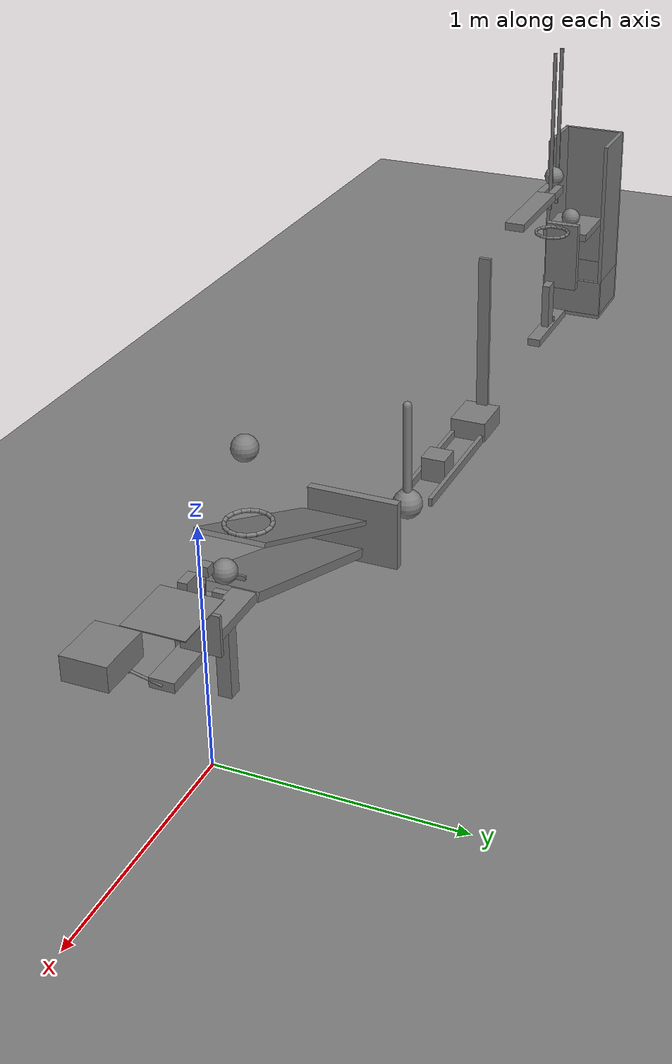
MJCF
<mujoco model="separated_gate_and_striker_cascade">
  <compiler angle="radian"/>
  <option timestep="0.002"/>
  <worldbody>
    <geom name="floor" type="plane" size="12 12 0.1" friction="0.72 0.005 0.0001"/>
    <body name="lever1" pos="0 0 0.55">
      <joint name="lever1_hinge" type="hinge" pos="0 0 0" axis="0 1 0" limited="true" range="-0.785398 0" stiffness="0.03" springref="-0.785398" damping="0.04"/>
      <geom name="lever1" type="box" pos="0 0 0" size="0.3 0.05 0.02" mass="0.411" friction="0.72 0.005 0.0001" solref="0.01 0.715646"/>
      <geom name="lever counterweight" type="box" pos="0.015 0.03 0.3" size="0.02 0.02 0.02" mass="0.08" friction="0.72 0.005 0.0001" solref="0.01 0.715646"/>
      <geom name="lever counterweight stem" type="capsule" size="0.002" fromto="0 0 0 0.015 0.03 0.28" mass="0.001" friction="0.72 0.005 0.0001" solref="0.01 0.715646"/>
      <geom name="lever gate lifter" type="box" pos="0.1 0.045 0.1025" size="0.0075 0.08 0.0825" mass="0.003" friction="0.72 0.005 0.0001" solref="0.01 0.715646"/>
      <geom name="lever cart striker" type="sphere" pos="0.29 -0.13 0.02" size="0.01" mass="0.003" friction="0.72 0.005 0.0001" solref="0.01 0.715646"/>
      <geom name="lever striker link" type="capsule" size="0.005" fromto="0.3 0 0 0.29 -0.13 0.02" mass="0.002" friction="0.72 0.005 0.0001" solref="0.01 0.715646"/>
    </body>
    <body name="ring1">
      <geom name="ring1_00" type="capsule" size="0.008" fromto="-0.197 0.04 0.87 -0.203699 0.0736761 0.87" friction="0.72 0.005 0.0001" solref="0.01 0.715646"/>
      <geom name="ring1_01" type="capsule" size="0.008" fromto="-0.203699 0.0736761 0.87 -0.222775 0.102225 0.87" friction="0.72 0.005 0.0001" solref="0.01 0.715646"/>
      <geom name="ring1_02" type="capsule" size="0.008" fromto="-0.222775 0.102225 0.87 -0.251324 0.121301 0.87" friction="0.72 0.005 0.0001" solref="0.01 0.715646"/>
      <geom name="ring1_03" type="capsule" size="0.008" fromto="-0.251324 0.121301 0.87 -0.285 0.128 0.87" friction="0.72 0.005 0.0001" solref="0.01 0.715646"/>
      <geom name="ring1_04" type="capsule" size="0.008" fromto="-0.285 0.128 0.87 -0.318676 0.121301 0.87" friction="0.72 0.005 0.0001" solref="0.01 0.715646"/>
      <geom name="ring1_05" type="capsule" size="0.008" fromto="-0.318676 0.121301 0.87 -0.347225 0.102225 0.87" friction="0.72 0.005 0.0001" solref="0.01 0.715646"/>
      <geom name="ring1_06" type="capsule" size="0.008" fromto="-0.347225 0.102225 0.87 -0.366301 0.0736761 0.87" friction="0.72 0.005 0.0001" solref="0.01 0.715646"/>
      <geom name="ring1_07" type="capsule" size="0.008" fromto="-0.366301 0.0736761 0.87 -0.373 0.04 0.87" friction="0.72 0.005 0.0001" solref="0.01 0.715646"/>
      <geom name="ring1_08" type="capsule" size="0.008" fromto="-0.373 0.04 0.87 -0.366301 0.00632386 0.87" friction="0.72 0.005 0.0001" solref="0.01 0.715646"/>
      <geom name="ring1_09" type="capsule" size="0.008" fromto="-0.366301 0.00632386 0.87 -0.347225 -0.0222254 0.87" friction="0.72 0.005 0.0001" solref="0.01 0.715646"/>
      <geom name="ring1_10" type="capsule" size="0.008" fromto="-0.347225 -0.0222254 0.87 -0.318676 -0.0413014 0.87" friction="0.72 0.005 0.0001" solref="0.01 0.715646"/>
      <geom name="ring1_11" type="capsule" size="0.008" fromto="-0.318676 -0.0413014 0.87 -0.285 -0.048 0.87" friction="0.72 0.005 0.0001" solref="0.01 0.715646"/>
      <geom name="ring1_12" type="capsule" size="0.008" fromto="-0.285 -0.048 0.87 -0.251324 -0.0413014 0.87" friction="0.72 0.005 0.0001" solref="0.01 0.715646"/>
      <geom name="ring1_13" type="capsule" size="0.008" fromto="-0.251324 -0.0413014 0.87 -0.222775 -0.0222254 0.87" friction="0.72 0.005 0.0001" solref="0.01 0.715646"/>
      <geom name="ring1_14" type="capsule" size="0.008" fromto="-0.222775 -0.0222254 0.87 -0.203699 0.00632386 0.87" friction="0.72 0.005 0.0001" solref="0.01 0.715646"/>
      <geom name="ring1_15" type="capsule" size="0.008" fromto="-0.203699 0.00632386 0.87 -0.197 0.04 0.87" friction="0.72 0.005 0.0001" solref="0.01 0.715646"/>
    </body>
    <body name="ball1" pos="-0.285 0.04 1.17">
      <freejoint/>
      <geom name="ball1" type="sphere" pos="0 0 0" size="0.05" mass="0.2" condim="6" friction="0.72 0.005 0.0001" solref="0.01 0.715646"/>
    </body>
    <body name="cart1 release gate" pos="0.165 -0.02 0.751">
      <joint name="cart1_gate_slide" type="slide" pos="0 0 0" axis="0 0 1" limited="true" range="0 0.05" damping="0.2"/>
      <geom name="cart1 release gate" type="box" pos="0 0 0" size="0.135 0.125 0.002" mass="0.01" friction="0.72 0.005 0.0001" solref="0.01 0.715646"/>
    </body>
    <body name="cart1" pos="0.41 -0.15 0.7">
      <joint name="cart1_slide" type="slide" pos="0 0 0" axis="1 0 0" limited="true" range="-0.6 0" stiffness="180" springref="-0.42" damping="0.2"/>
      <geom name="cart1" type="box" pos="0 0 0" size="0.11 0.09 0.05" mass="0.5" friction="0.72 0.005 0.0001" solref="0.01 0.715646"/>
    </body>
    <body name="domino1 platform">
      <geom name="domino1 platform" type="box" pos="-0.3 -0.15 0.41" size="0.2 0.035 0.02" friction="0.72 0.005 0.0001" solref="0.01 0.715646"/>
    </body>
    <body name="domino1 toe">
      <geom name="domino1 toe" type="box" pos="-0.205 -0.15 0.445" size="0.005 0.03 0.015" friction="0.72 0.005 0.0001" solref="0.01 0.715646"/>
    </body>
    <body name="domino1" pos="-0.16 -0.15 0.55">
      <freejoint/>
      <geom name="domino1" type="box" pos="0 0 0" size="0.04 0.02 0.12" mass="0.25" friction="0.72 0.005 0.0001" solref="0.01 0.715646"/>
    </body>
    <body name="ramp1">
      <geom name="ramp1_deck" type="box" pos="-0.875906 -0.15 0.302216" size="0.5 0.15 0.02" euler="0 2.79253 0" friction="0.72 0.005 0.0001" solref="0.01 0.715646"/>
      <geom name="ramp1_leg" type="box" pos="-0.406059 -0.15 0.236613" size="0.03 0.03 0.236613" friction="0.72 0.005 0.0001" solref="0.01 0.715646"/>
    </body>
    <body name="ball2" pos="-0.43 -0.15 0.539004">
      <freejoint/>
      <geom name="ball2" type="sphere" pos="0 0 0" size="0.05" mass="0.2" condim="6" friction="0.72 0.005 0.0001" solref="0.01 0.715646"/>
    </body>
    <body name="ball2 retaining lip">
      <geom name="ball2 retaining lip" type="box" pos="-0.48 -0.15 0.492" size="0.005 0.06 0.01" friction="0.72 0.005 0.0001" solref="0.01 0.715646"/>
    </body>
    <body name="ramp cover">
      <geom name="ramp cover" type="box" pos="-0.932681 -0.15 0.458205" size="0.501155 0.15 0.01" euler="0 2.72463 0" friction="0.72 0.005 0.0001" solref="0.01 0.715646"/>
    </body>
    <body name="door1" pos="-1.46575 0.12 0.18">
      <joint name="door1_hinge" type="hinge" pos="0 0 0" axis="0 0 1" limited="true" range="-1.22173 0" damping="0.04"/>
      <geom name="door1" type="box" pos="0 -0.21 0" size="0.02 0.21 0.16" mass="0.45" friction="0.72 0.005 0.0001" solref="0.01 0.715646"/>
    </body>
    <body name="pendulum1" pos="-1.91042 -0.024 0.57">
      <joint name="pendulum1_hinge" type="hinge" pos="0 0 0" axis="0 1 0" limited="true" range="0 0.785398" damping="0.04"/>
      <geom name="pendulum1" type="sphere" pos="0 0 -0.5" size="0.07" mass="0.28" friction="0.72 0.005 0.0001" solref="0.01 0.715646"/>
      <geom name="pendulum rod" type="capsule" size="0.02" fromto="0 0 0 0 3.46945e-18 -0.43" mass="0.07" friction="0.72 0.005 0.0001" solref="0.01 0.715646"/>
    </body>
    <body name="block1" pos="-2.32022 -0.04 0.06">
      <freejoint/>
      <geom name="block1" type="box" pos="0 0 0" size="0.06 0.06 0.06" mass="0.35" friction="0.72 0.005 0.0001" solref="0.01 0.715646"/>
    </body>
    <body name="block left guide">
      <geom name="block left guide" type="box" pos="-2.38022 0.035 0.02" size="0.34 0.01 0.02" friction="0.72 0.005 0.0001" solref="0.01 0.715646"/>
    </body>
    <body name="block right guide">
      <geom name="block right guide" type="box" pos="-2.38022 -0.115 0.02" size="0.34 0.01 0.02" friction="0.72 0.005 0.0001" solref="0.01 0.715646"/>
    </body>
    <body name="cart2" pos="-2.84022 -0.04 0.05">
      <joint name="cart2_slide" type="slide" pos="0 0 0" axis="1 0 0" limited="true" range="-0.65 0" damping="0.2"/>
      <geom name="cart2" type="box" pos="0 0 0" size="0.11 0.09 0.05" mass="0.48" friction="0.72 0.005 0.0001" solref="0.01 0.715646"/>
      <geom name="cart2 upright" type="box" pos="-0.1 0 0.445" size="0.01 0.03 0.395" mass="0.02" friction="0.72 0.005 0.0001" solref="0.01 0.715646"/>
    </body>
    <body name="seesaw1" pos="-3.69522 -0.04 0.9">
      <joint name="seesaw1_hinge" type="hinge" pos="0 0 0" axis="0 1 0" limited="true" range="0 0.733038" stiffness="0.75" springref="0.733038" damping="0.04"/>
      <geom name="seesaw1" type="box" pos="0.07 0 0" size="0.255 0.05 0.02" mass="0.450965" friction="0.72 0.005 0.0001" solref="0.01 0.715646"/>
      <geom name="seesaw upper tine" type="box" pos="-0.255 0.03 0" size="0.07 0.02 0.02" mass="0.0495177" friction="0.72 0.005 0.0001" solref="0.01 0.715646"/>
      <geom name="seesaw lower tine" type="box" pos="-0.255 -0.03 0" size="0.07 0.02 0.02" mass="0.0495177" friction="0.72 0.005 0.0001" solref="0.01 0.715646"/>
    </body>
    <body name="ball3 forward guide">
      <geom name="ball3 forward guide" type="box" pos="-3.95522 -0.04 1.225" size="0.005 0.009 0.425" friction="0.72 0.005 0.0001" solref="0.01 0.715646"/>
    </body>
    <body name="ball3 rear guide">
      <geom name="ball3 rear guide" type="box" pos="-4.06522 -0.04 1.225" size="0.005 0.009 0.425" friction="0.72 0.005 0.0001" solref="0.01 0.715646"/>
    </body>
    <body name="ball3" pos="-4.01022 -0.04 0.97">
      <freejoint/>
      <geom name="ball3" type="sphere" pos="0 0 0" size="0.05" mass="0.2" condim="6" friction="0.72 0.005 0.0001" solref="0.01 0.715646"/>
    </body>
    <body name="ring2">
      <geom name="ring2_00" type="capsule" size="0.008" fromto="-3.92222 -0.04 0.65 -3.92892 -0.00632386 0.65" friction="0.72 0.005 0.0001" solref="0.01 0.715646"/>
      <geom name="ring2_01" type="capsule" size="0.008" fromto="-3.92892 -0.00632386 0.65 -3.94799 0.0222254 0.65" friction="0.72 0.005 0.0001" solref="0.01 0.715646"/>
      <geom name="ring2_02" type="capsule" size="0.008" fromto="-3.94799 0.0222254 0.65 -3.97654 0.0413014 0.65" friction="0.72 0.005 0.0001" solref="0.01 0.715646"/>
      <geom name="ring2_03" type="capsule" size="0.008" fromto="-3.97654 0.0413014 0.65 -4.01022 0.048 0.65" friction="0.72 0.005 0.0001" solref="0.01 0.715646"/>
      <geom name="ring2_04" type="capsule" size="0.008" fromto="-4.01022 0.048 0.65 -4.04389 0.0413014 0.65" friction="0.72 0.005 0.0001" solref="0.01 0.715646"/>
      <geom name="ring2_05" type="capsule" size="0.008" fromto="-4.04389 0.0413014 0.65 -4.07244 0.0222254 0.65" friction="0.72 0.005 0.0001" solref="0.01 0.715646"/>
      <geom name="ring2_06" type="capsule" size="0.008" fromto="-4.07244 0.0222254 0.65 -4.09152 -0.00632386 0.65" friction="0.72 0.005 0.0001" solref="0.01 0.715646"/>
      <geom name="ring2_07" type="capsule" size="0.008" fromto="-4.09152 -0.00632386 0.65 -4.09822 -0.04 0.65" friction="0.72 0.005 0.0001" solref="0.01 0.715646"/>
      <geom name="ring2_08" type="capsule" size="0.008" fromto="-4.09822 -0.04 0.65 -4.09152 -0.0736761 0.65" friction="0.72 0.005 0.0001" solref="0.01 0.715646"/>
      <geom name="ring2_09" type="capsule" size="0.008" fromto="-4.09152 -0.0736761 0.65 -4.07244 -0.102225 0.65" friction="0.72 0.005 0.0001" solref="0.01 0.715646"/>
      <geom name="ring2_10" type="capsule" size="0.008" fromto="-4.07244 -0.102225 0.65 -4.04389 -0.121301 0.65" friction="0.72 0.005 0.0001" solref="0.01 0.715646"/>
      <geom name="ring2_11" type="capsule" size="0.008" fromto="-4.04389 -0.121301 0.65 -4.01022 -0.128 0.65" friction="0.72 0.005 0.0001" solref="0.01 0.715646"/>
      <geom name="ring2_12" type="capsule" size="0.008" fromto="-4.01022 -0.128 0.65 -3.97654 -0.121301 0.65" friction="0.72 0.005 0.0001" solref="0.01 0.715646"/>
      <geom name="ring2_13" type="capsule" size="0.008" fromto="-3.97654 -0.121301 0.65 -3.94799 -0.102225 0.65" friction="0.72 0.005 0.0001" solref="0.01 0.715646"/>
      <geom name="ring2_14" type="capsule" size="0.008" fromto="-3.94799 -0.102225 0.65 -3.92892 -0.0736761 0.65" friction="0.72 0.005 0.0001" solref="0.01 0.715646"/>
      <geom name="ring2_15" type="capsule" size="0.008" fromto="-3.92892 -0.0736761 0.65 -3.92222 -0.04 0.65" friction="0.72 0.005 0.0001" solref="0.01 0.715646"/>
    </body>
    <body name="domino2 platform">
      <geom name="domino2 platform" type="box" pos="-3.97522 -0.04 0.1" size="0.225 0.035 0.02" friction="0.72 0.005 0.0001" solref="0.01 0.715646"/>
    </body>
    <body name="domino2 toe">
      <geom name="domino2 toe" type="box" pos="-4.02022 -0.04 0.135" size="0.005 0.03 0.015" friction="0.72 0.005 0.0001" solref="0.01 0.715646"/>
    </body>
    <body name="domino2" pos="-3.97522 -0.04 0.24">
      <freejoint/>
      <geom name="domino2" type="box" pos="0 0 0" size="0.04 0.02 0.12" mass="0.25" friction="0.72 0.005 0.0001" solref="0.01 0.715646"/>
    </body>
    <body name="flap1" pos="-4.21522 -0.04 0.63">
      <joint name="flap1_hinge" type="hinge" pos="0 0 0" axis="0 1 0" limited="true" range="0 1.0472" damping="0.04"/>
      <geom name="flap1" type="box" pos="0 6.93889e-18 -0.19" size="0.02 0.09 0.19" mass="0.28" friction="0.72 0.005 0.0001" solref="0.01 0.715646"/>
    </body>
    <body name="cup1">
      <geom name="cup1_base" type="box" pos="-4.58712 -0.04 0.01" size="0.17 0.17 0.01" friction="0.72 0.005 0.0001" solref="0.01 0.715646"/>
      <geom name="cup1_near_wall" type="box" pos="-4.74712 -0.04 0.12" size="0.01 0.17 0.1" friction="0.72 0.005 0.0001" solref="0.01 0.715646"/>
      <geom name="cup1_far_wall" type="box" pos="-4.42712 -0.04 0.12" size="0.01 0.17 0.1" friction="0.72 0.005 0.0001" solref="0.01 0.715646"/>
      <geom name="cup1_left_wall" type="box" pos="-4.58712 0.12 0.12" size="0.15 0.01 0.1" friction="0.72 0.005 0.0001" solref="0.01 0.715646"/>
      <geom name="cup1_right_wall" type="box" pos="-4.58712 -0.2 0.12" size="0.15 0.01 0.1" friction="0.72 0.005 0.0001" solref="0.01 0.715646"/>
    </body>
    <body name="shelf1">
      <geom name="shelf1" type="box" pos="-4.39212 -0.04 0.55" size="0.15 0.125 0.02" friction="0.72 0.005 0.0001" solref="0.01 0.715646"/>
    </body>
    <body name="ball4" pos="-4.35212 -0.04 0.62">
      <freejoint/>
      <geom name="ball4" type="sphere" pos="0 0 0" size="0.05" mass="0.2" condim="6" friction="0.72 0.005 0.0001" solref="0.01 0.715646"/>
    </body>
    <body name="cup backstop">
      <geom name="cup backstop" type="box" pos="-4.74712 -0.04 0.62" size="0.01 0.17 0.4" friction="0.72 0.005 0.0001" solref="0.01 0.715646"/>
    </body>
    <body name="cup left catch guide">
      <geom name="cup left catch guide" type="box" pos="-4.58712 0.12 0.62" size="0.15 0.01 0.4" friction="0.72 0.005 0.0001" solref="0.01 0.715646"/>
    </body>
    <body name="cup right catch guide">
      <geom name="cup right catch guide" type="box" pos="-4.58712 -0.2 0.62" size="0.15 0.01 0.4" friction="0.72 0.005 0.0001" solref="0.01 0.715646"/>
    </body>
  </worldbody>
  <keyframe>
    <key name="start" qpos="0 -0.285 0.04 1.17 1 0 0 0 0 0 -0.16 -0.15 0.55 1 0 0 0 -0.43 -0.15 0.539004 1 0 0 0 0 0 -2.32022 -0.04 0.06 1 0 0 0 0 0 -4.01022 -0.04 0.97 1 0 0 0 -3.97522 -0.04 0.24 1 0 0 0 0 -4.35212 -0.04 0.62 1 0 0 0" qvel="0 0 0 0 0 0 0 0 0 0 0 0 0 0 0 0 0 0 0 0 0 0 0 0 0 0 0 0 0 0 0 0 0 0 0 0 0 0 0 0 0 0 0 0 0 0 0 0 0 0"/>
  </keyframe>
</mujoco>
